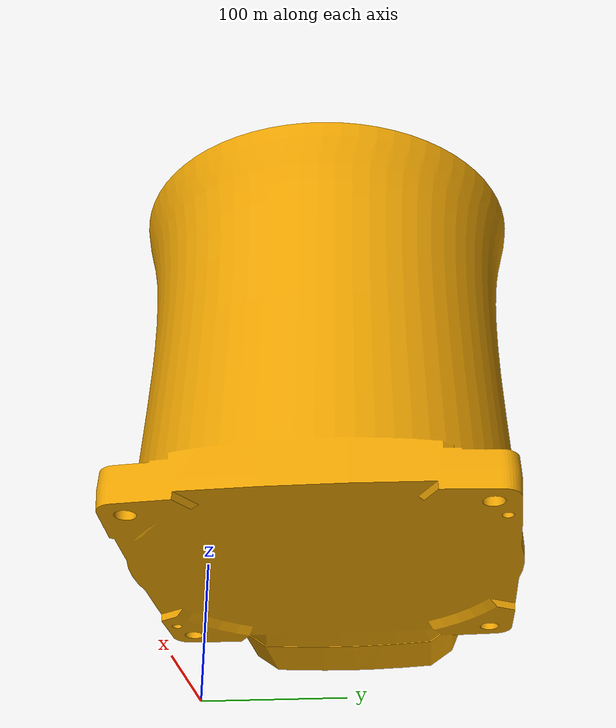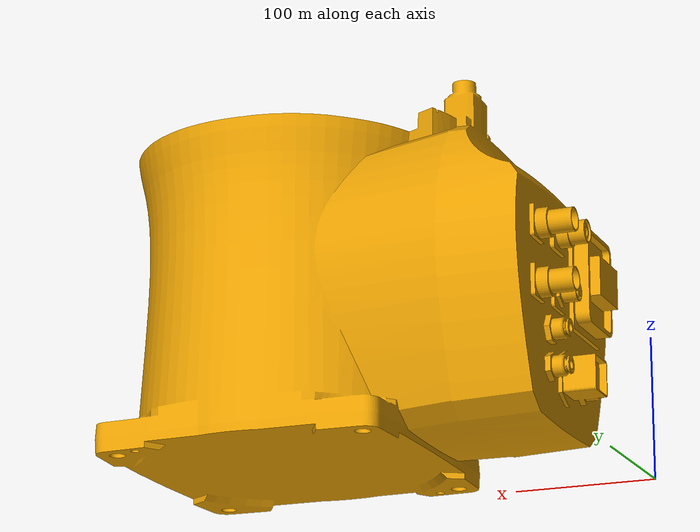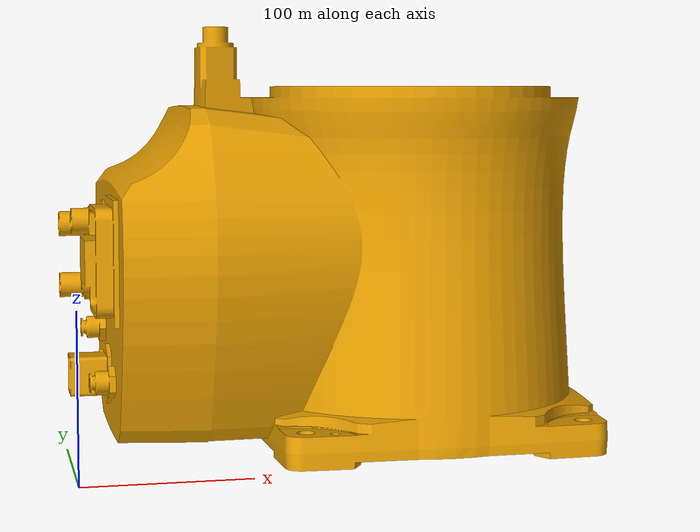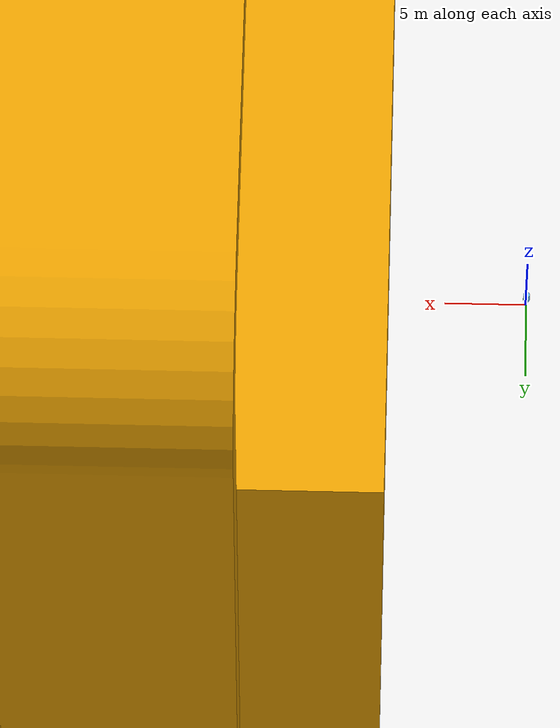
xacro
<?xml version="1.0"?>
<robot xmlns:xacro="http://wiki.ros.org/xacro" name="my_scara">

  <!-- czlony -->
  <link name="base_link">
    <visual>
      <origin rpy="0 0 0" xyz="0.15 0 0.35"/>
      <geometry>
        <mesh filename="package://my_scara/meshes/Base.dae"/>
      </geometry>
    </visual>
  </link>

  <joint name="base_link_to_base_laser_joint" type="fixed">
    <parent link="base_link"/>
    <child link="base_laser"/>
    <origin xyz="0 0 1.0"/>
  </joint>

  <link name="base_laser">
    <visual>
      <origin rpy="0 0 0" xyz="0 0 0"/>
      <geometry>
        <cylinder length="0.6" radius="0.2"/>
      </geometry>
    </visual>
  </link>
</robot>
